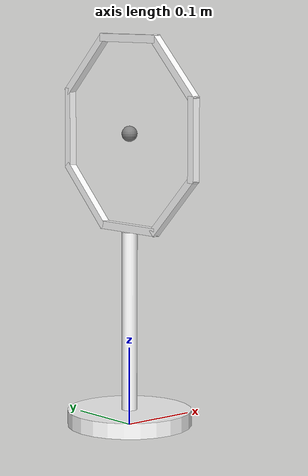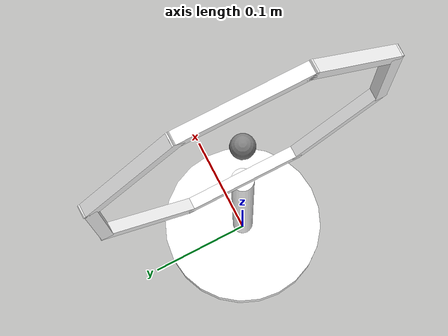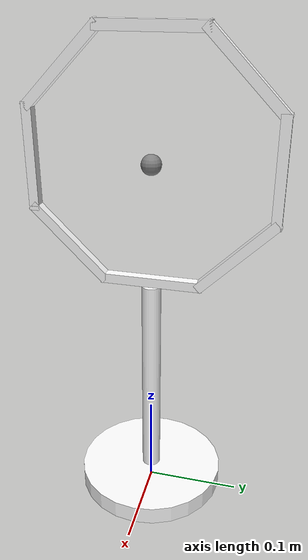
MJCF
<mujoco model="stand">
  <compiler angle="radian" meshdir="assets" autolimits="true"/>

  <option cone="elliptic" impratio="10"/>

  <default>
    <default class="stand">
      <default class="visual">
        <geom group="2" contype="0" conaffinity="0"/>
      </default>
      <default class="collision">
        <geom group="3" condim="3" margin="0.001"/>
      </default>
    </default>
  </default>

  <worldbody>
    <body name="stand_body" childclass="stand">
        <body name="ring" pos="0 0 0.375" euler="0 1.571 0">
          <site name="ring_site" type="sphere" pos="0 0 0" euler="0 -1.5708 0" size="0.01"/>
          <geom type="box" class="visual" name="ring_segment_00_visual" pos="0.12 0 0" euler="0 0 0" size="0.005 0.052812 0.005" rgba="1 1 1 1" />
          <geom type="box" class="collision" name="ring_segment_00_collision" pos="0.12 0 0" euler="0 0 0" size="0.005 0.052812 0.005" friction="1 0.3 0.1" density="50" />
          <geom type="box" class="visual" name="ring_segment_01_visual" pos="0.084853 0.084853 0" euler="0 0 0.785398" size="0.005 0.052812 0.005" rgba="1 1 1 1" />
          <geom type="box" class="collision" name="ring_segment_01_collision" pos="0.084853 0.084853 0" euler="0 0 0.785398" size="0.005 0.052812 0.005" friction="1 0.3 0.1" density="50" />
          <geom type="box" class="visual" name="ring_segment_02_visual" pos="0 0.12 0" euler="0 0 1.570796" size="0.005 0.052812 0.005" rgba="1 1 1 1" />
          <geom type="box" class="collision" name="ring_segment_02_collision" pos="0 0.12 0" euler="0 0 1.570796" size="0.005 0.052812 0.005" friction="1 0.3 0.1" density="50" />
          <geom type="box" class="visual" name="ring_segment_03_visual" pos="-0.084853 0.084853 0" euler="0 0 2.356194" size="0.005 0.052812 0.005" rgba="1 1 1 1" />
          <geom type="box" class="collision" name="ring_segment_03_collision" pos="-0.084853 0.084853 0" euler="0 0 2.356194" size="0.005 0.052812 0.005" friction="1 0.3 0.1" density="50" />
          <geom type="box" class="visual" name="ring_segment_04_visual" pos="-0.12 0 0" euler="0 0 3.141593" size="0.005 0.052812 0.005" rgba="1 1 1 1" />
          <geom type="box" class="collision" name="ring_segment_04_collision" pos="-0.12 0 0" euler="0 0 3.141593" size="0.005 0.052812 0.005" friction="1 0.3 0.1" density="50" />
          <geom type="box" class="visual" name="ring_segment_05_visual" pos="-0.084853 -0.084853 0" euler="0 0 3.926991" size="0.005 0.052812 0.005" rgba="1 1 1 1" />
          <geom type="box" class="collision" name="ring_segment_05_collision" pos="-0.084853 -0.084853 0" euler="0 0 3.926991" size="0.005 0.052812 0.005" friction="1 0.3 0.1" density="50" />
          <geom type="box" class="visual" name="ring_segment_06_visual" pos="0 -0.12 0" euler="0 0 4.712389" size="0.005 0.052812 0.005" rgba="1 1 1 1" />
          <geom type="box" class="collision" name="ring_segment_06_collision" pos="0 -0.12 0" euler="0 0 4.712389" size="0.005 0.052812 0.005" friction="1 0.3 0.1" density="50" />
          <geom type="box" class="visual" name="ring_segment_07_visual" pos="0.084853 -0.084853 0" euler="0 0 5.497787" size="0.005 0.052812 0.005" rgba="1 1 1 1" />
          <geom type="box" class="collision" name="ring_segment_07_collision" pos="0.084853 -0.084853 0" euler="0 0 5.497787" size="0.005 0.052812 0.005" friction="1 0.3 0.1" density="50" />
        </body>
        <geom type="cylinder" class="visual" rgba="1 1 1 1" pos="0 0 0.125" size="0.01 0.125"/>
        <geom type="cylinder" class="collision" pos="0 0 0.125" size="0.01 0.125"/>
        <geom type="cylinder" class="visual" rgba="1 1 1 1" pos="0 0 0.01" size="0.08 0.01"/>
        <geom type="cylinder" class="collision" pos="0 0 0.01" size="0.08 0.01"/>
    </body>
  </worldbody>

</mujoco>
